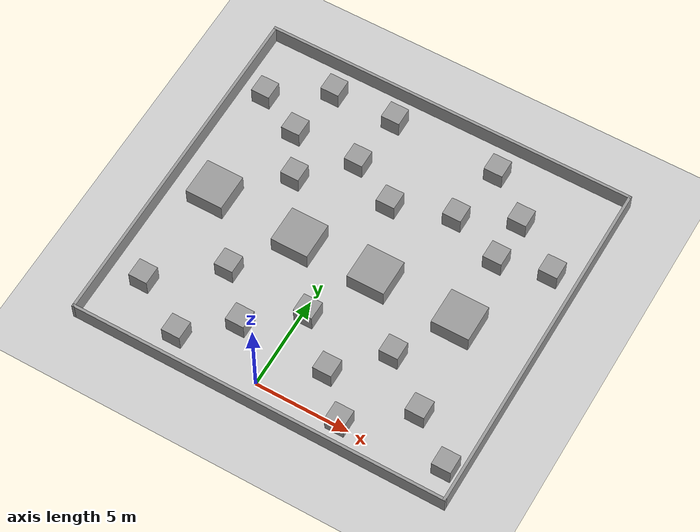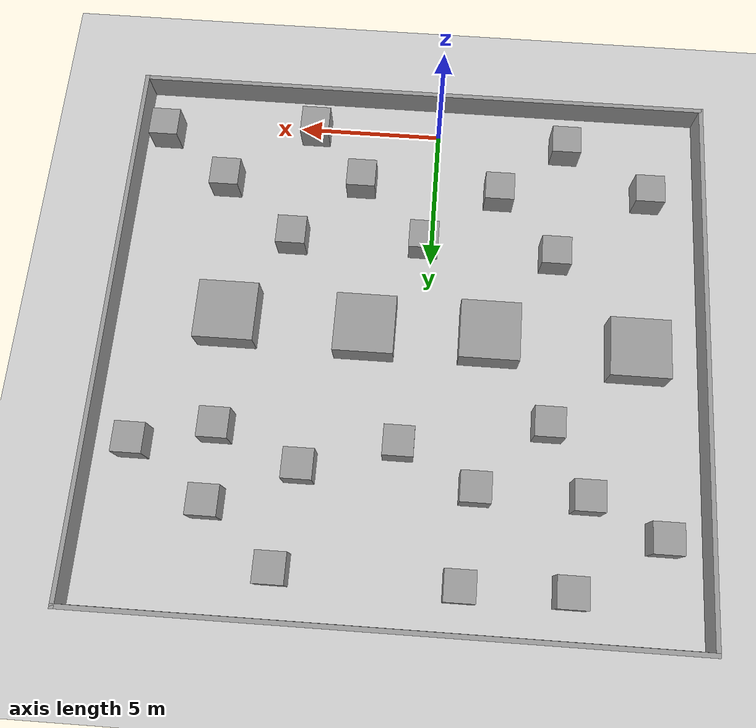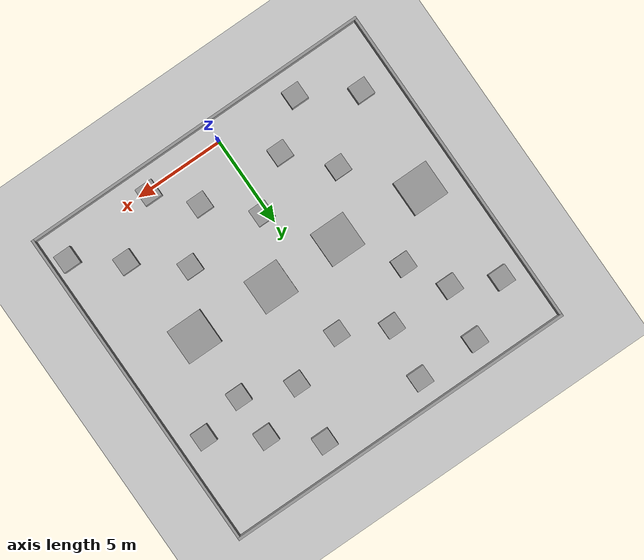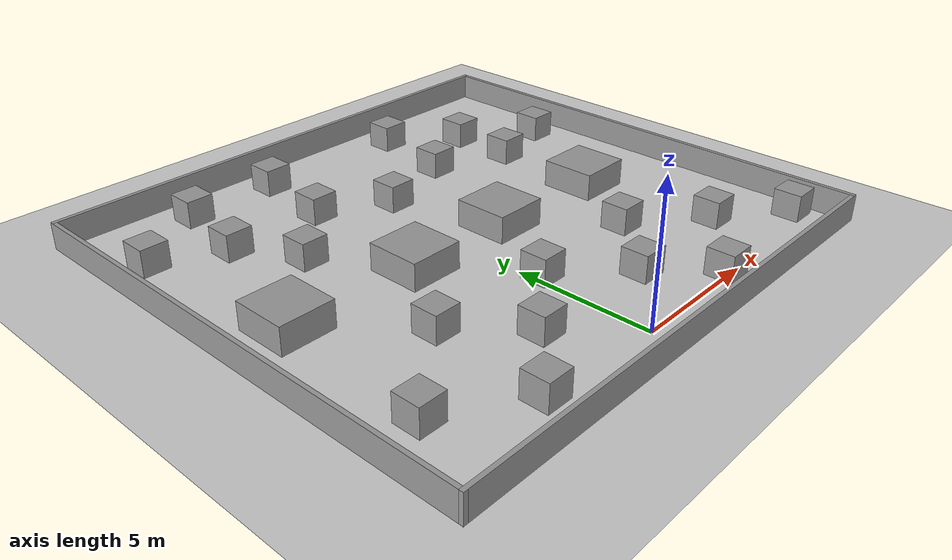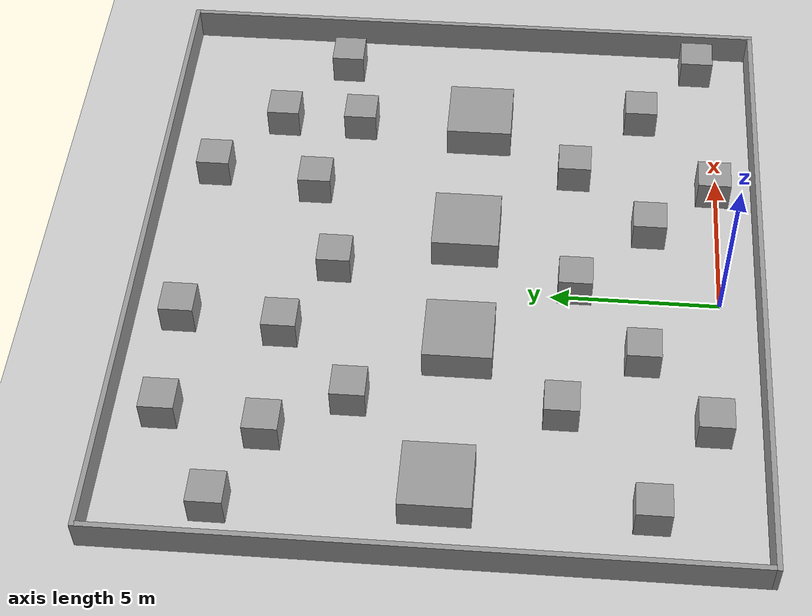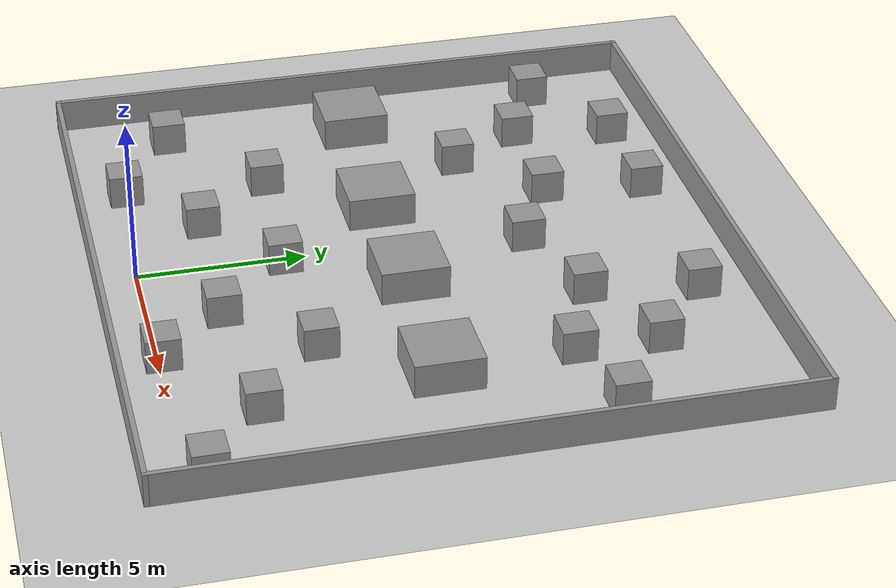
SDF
<sdf version="1.6">
 <world name="default">
  <light name="sun" type="directional">
   <pose>0 0 10 0 -0 0</pose>
   <diffuse>0.8 0.8 0.8 1</diffuse>
   <specular>0.2 0.2 0.2 1</specular>
   <attenuation>
    <range>1000</range>
    <constant>0.9</constant>
    <linear>0.01</linear>
    <quadratic>0.001</quadratic>
   </attenuation>
   <direction>-0.5 0.1 -0.9</direction>
  </light>
  <model name="ground_plane">
   <static>1</static>
   <link name="link">
    <collision name="collision">
     <geometry><plane><normal>0 0 1</normal><size>100 100</size></plane></geometry>
     <surface><friction><ode><mu>100</mu><mu2>50</mu2></ode></friction></surface>
    </collision>
    <visual name="visual">
     <cast_shadows>0</cast_shadows>
     <geometry><plane><normal>0 0 1</normal><size>100 100</size></plane></geometry>
     <material>
      <script><uri>file://media/materials/scripts/gazebo.material</uri><name>Gazebo/Grey</name></script>
     </material>
    </visual>
   </link>
  </model>
  <gravity>0 0 -9.8</gravity>
  <magnetic_field>6e-06 2.3e-05 -4.2e-05</magnetic_field>
  <atmosphere type="adiabatic"/>
  <physics name="default_physics" default="0" type="ode">
   <max_step_size>0.001</max_step_size>
   <real_time_factor>1</real_time_factor>
   <real_time_update_rate>1000</real_time_update_rate>
  </physics>
  <scene><ambient>0.4 0.4 0.4 1</ambient><background>0.7 0.7 0.7 1</background><shadows>1</shadows></scene>
  <spherical_coordinates>
   <surface_model>EARTH_WGS84</surface_model>
   <latitude_deg>0</latitude_deg>
   <longitude_deg>0</longitude_deg>
   <elevation>0</elevation>
   <heading_deg>0</heading_deg>
  </spherical_coordinates>
  <model name="map1">
   <pose>0.69437 8.013 0 0 -0 0</pose>
   <link name="Wall_0">
    <collision name="Wall_0_Collision">
     <geometry><box><size>20 0.15 1</size></box></geometry>
     <pose>0 0 0.5 0 -0 0</pose>
    </collision>
    <visual name="Wall_0_Visual">
     <pose>0 0 0.5 0 -0 0</pose>
     <geometry><box><size>20 0.15 1</size></box></geometry>
     <material>
      <script><uri>file://media/materials/scripts/gazebo.material</uri><name>Gazebo/Grey</name></script>
      <ambient>1 1 1 1</ambient>
     </material>
     <meta><layer>0</layer></meta>
    </visual>
    <pose>0 9.175 0 0 -0 0</pose>
   </link>
   <link name="Wall_3">
    <collision name="Wall_3_Collision">
     <geometry><box><size>18.5 0.15 1</size></box></geometry>
     <pose>0 0 0.5 0 -0 0</pose>
    </collision>
    <visual name="Wall_3_Visual">
     <pose>0 0 0.5 0 -0 0</pose>
     <geometry><box><size>18.5 0.15 1</size></box></geometry>
     <material>
      <script><uri>file://media/materials/scripts/gazebo.material</uri><name>Gazebo/Grey</name></script>
      <ambient>1 1 1 1</ambient>
     </material>
     <meta><layer>0</layer></meta>
    </visual>
    <pose>9.925 0 0 0 -0 -1.5708</pose>
   </link>
   <link name="Wall_4">
    <collision name="Wall_4_Collision">
     <geometry><box><size>20 0.15 1</size></box></geometry>
     <pose>0 0 0.5 0 -0 0</pose>
    </collision>
    <visual name="Wall_4_Visual">
     <pose>0 0 0.5 0 -0 0</pose>
     <geometry><box><size>20 0.15 1</size></box></geometry>
     <material>
      <script><uri>file://media/materials/scripts/gazebo.material</uri><name>Gazebo/Grey</name></script>
      <ambient>1 1 1 1</ambient>
     </material>
     <meta><layer>0</layer></meta>
    </visual>
    <pose>0 -9.175 0 0 -0 3.14159</pose>
   </link>
   <link name="Wall_5">
    <collision name="Wall_5_Collision">
     <geometry><box><size>18.5 0.15 1</size></box></geometry>
     <pose>0 0 0.5 0 -0 0</pose>
    </collision>
    <visual name="Wall_5_Visual">
     <pose>0 0 0.5 0 -0 0</pose>
     <geometry><box><size>18.5 0.15 1</size></box></geometry>
     <material>
      <script><uri>file://media/materials/scripts/gazebo.material</uri><name>Gazebo/Grey</name></script>
      <ambient>1 1 1 1</ambient>
     </material>
     <meta><layer>0</layer></meta>
    </visual>
    <pose>-9.925 0 0 0 -0 1.5708</pose>
   </link>
   <static>1</static>
  </model>
  <model name="box_1">
   <link name="link_3">
    <inertial>
     <mass>1</mass>
     <inertia>
      <ixx>0.166667</ixx>
      <ixy>0</ixy>
      <ixz>0</ixz>
      <iyy>0.166667</iyy>
      <iyz>0</iyz>
      <izz>0.166667</izz>
     </inertia>
    </inertial>
    <pose>-0.10623 1.19174 0.5 0 -0 0</pose>
    <visual name="visual">
     <geometry><box><size>1 1 1</size></box></geometry>
     <material>
      <lighting>1</lighting>
      <script><uri>file://media/materials/scripts/gazebo.material</uri><name>Gazebo/Grey</name></script>
      <shader type="pixel"/>
     </material>
    </visual>
    <collision name="collision">
     <geometry><box><size>1 1 1</size></box></geometry>
     <surface>
      <friction>
       <ode><mu>1</mu><mu2>1</mu2><fdir1>0 0 0</fdir1><slip1>0</slip1><slip2>0</slip2></ode>
       <torsional>
        <coefficient>1</coefficient>
        <patch_radius>0</patch_radius>
        <surface_radius>0</surface_radius>
        <use_patch_radius>1</use_patch_radius>
        <ode><slip>0</slip></ode>
       </torsional>
      </friction>
      <bounce><restitution_coefficient>0</restitution_coefficient><threshold>1e+06</threshold></bounce>
      <contact>
       <collide_without_contact>0</collide_without_contact>
       <collide_without_contact_bitmask>1</collide_without_contact_bitmask>
       <collide_bitmask>1</collide_bitmask>
       <ode>
        <soft_cfm>0</soft_cfm>
        <soft_erp>0.2</soft_erp>
        <kp>1e+13</kp>
        <kd>1</kd>
        <max_vel>0.01</max_vel>
        <min_depth>0</min_depth>
       </ode>
       <bullet>
        <split_impulse>1</split_impulse>
        <split_impulse_penetration_threshold>-0.01</split_impulse_penetration_threshold>
        <soft_cfm>0</soft_cfm>
        <soft_erp>0.2</soft_erp>
        <kp>1e+13</kp>
        <kd>1</kd>
       </bullet>
      </contact>
     </surface>
    </collision>
   </link>
   <static>0</static>
   <pose>-2.12221 1.08979 -1.7e-05 1e-05 -0 0</pose>
  </model>
  <model name="box_1_clone">
   <link name="link_3">
    <inertial>
     <mass>1</mass>
     <inertia>
      <ixx>0.166667</ixx>
      <ixy>0</ixy>
      <ixz>0</ixz>
      <iyy>0.166667</iyy>
      <iyz>0</iyz>
      <izz>0.166667</izz>
     </inertia>
    </inertial>
    <pose>-0.10623 1.19174 0.5 0 -0 0</pose>
    <visual name="visual">
     <geometry><box><size>1 1 1</size></box></geometry>
     <material>
      <lighting>1</lighting>
      <script><uri>file://media/materials/scripts/gazebo.material</uri><name>Gazebo/Grey</name></script>
      <shader type="pixel"/>
     </material>
    </visual>
    <collision name="collision">
     <geometry><box><size>1 1 1</size></box></geometry>
     <surface>
      <friction>
       <ode><mu>1</mu><mu2>1</mu2><fdir1>0 0 0</fdir1><slip1>0</slip1><slip2>0</slip2></ode>
       <torsional>
        <coefficient>1</coefficient>
        <patch_radius>0</patch_radius>
        <surface_radius>0</surface_radius>
        <use_patch_radius>1</use_patch_radius>
        <ode><slip>0</slip></ode>
       </torsional>
      </friction>
      <bounce><restitution_coefficient>0</restitution_coefficient><threshold>1e+06</threshold></bounce>
      <contact>
       <collide_without_contact>0</collide_without_contact>
       <collide_without_contact_bitmask>1</collide_without_contact_bitmask>
       <collide_bitmask>1</collide_bitmask>
       <ode>
        <soft_cfm>0</soft_cfm>
        <soft_erp>0.2</soft_erp>
        <kp>1e+13</kp>
        <kd>1</kd>
        <max_vel>0.01</max_vel>
        <min_depth>0</min_depth>
       </ode>
       <bullet>
        <split_impulse>1</split_impulse>
        <split_impulse_penetration_threshold>-0.01</split_impulse_penetration_threshold>
        <soft_cfm>0</soft_cfm>
        <soft_erp>0.2</soft_erp>
        <kp>1e+13</kp>
        <kd>1</kd>
       </bullet>
      </contact>
     </surface>
    </collision>
   </link>
   <static>0</static>
   <pose>-4.13322 3.35982 -1.7e-05 1e-05 -0 0</pose>
  </model>
  <model name="box_1_clone_0">
   <link name="link_3">
    <inertial>
     <mass>1</mass>
     <inertia>
      <ixx>0.166667</ixx>
      <ixy>0</ixy>
      <ixz>0</ixz>
      <iyy>0.166667</iyy>
      <iyz>0</iyz>
      <izz>0.166667</izz>
     </inertia>
    </inertial>
    <pose>-0.10623 1.19174 0.5 0 -0 0</pose>
    <visual name="visual">
     <geometry><box><size>1 1 1</size></box></geometry>
     <material>
      <lighting>1</lighting>
      <script><uri>file://media/materials/scripts/gazebo.material</uri><name>Gazebo/Grey</name></script>
      <shader type="pixel"/>
     </material>
    </visual>
    <collision name="collision">
     <geometry><box><size>1 1 1</size></box></geometry>
     <surface>
      <friction>
       <ode><mu>1</mu><mu2>1</mu2><fdir1>0 0 0</fdir1><slip1>0</slip1><slip2>0</slip2></ode>
       <torsional>
        <coefficient>1</coefficient>
        <patch_radius>0</patch_radius>
        <surface_radius>0</surface_radius>
        <use_patch_radius>1</use_patch_radius>
        <ode><slip>0</slip></ode>
       </torsional>
      </friction>
      <bounce><restitution_coefficient>0</restitution_coefficient><threshold>1e+06</threshold></bounce>
      <contact>
       <collide_without_contact>0</collide_without_contact>
       <collide_without_contact_bitmask>1</collide_without_contact_bitmask>
       <collide_bitmask>1</collide_bitmask>
       <ode>
        <soft_cfm>0</soft_cfm>
        <soft_erp>0.2</soft_erp>
        <kp>1e+13</kp>
        <kd>1</kd>
        <max_vel>0.01</max_vel>
        <min_depth>0</min_depth>
       </ode>
       <bullet>
        <split_impulse>1</split_impulse>
        <split_impulse_penetration_threshold>-0.01</split_impulse_penetration_threshold>
        <soft_cfm>0</soft_cfm>
        <soft_erp>0.2</soft_erp>
        <kp>1e+13</kp>
        <kd>1</kd>
       </bullet>
      </contact>
     </surface>
    </collision>
   </link>
   <static>0</static>
   <pose>0.390969 3.09007 -1.7e-05 1e-05 -0 0</pose>
  </model>
  <model name="box_1_clone_1">
   <link name="link_3">
    <inertial>
     <mass>1</mass>
     <inertia>
      <ixx>0.166667</ixx>
      <ixy>0</ixy>
      <ixz>0</ixz>
      <iyy>0.166667</iyy>
      <iyz>0</iyz>
      <izz>0.166667</izz>
     </inertia>
    </inertial>
    <pose>-0.10623 1.19174 0.5 0 -0 0</pose>
    <visual name="visual">
     <geometry><box><size>1 1 1</size></box></geometry>
     <material>
      <lighting>1</lighting>
      <script><uri>file://media/materials/scripts/gazebo.material</uri><name>Gazebo/Grey</name></script>
      <shader type="pixel"/>
     </material>
    </visual>
    <collision name="collision">
     <geometry><box><size>1 1 1</size></box></geometry>
     <surface>
      <friction>
       <ode><mu>1</mu><mu2>1</mu2><fdir1>0 0 0</fdir1><slip1>0</slip1><slip2>0</slip2></ode>
       <torsional>
        <coefficient>1</coefficient>
        <patch_radius>0</patch_radius>
        <surface_radius>0</surface_radius>
        <use_patch_radius>1</use_patch_radius>
        <ode><slip>0</slip></ode>
       </torsional>
      </friction>
      <bounce><restitution_coefficient>0</restitution_coefficient><threshold>1e+06</threshold></bounce>
      <contact>
       <collide_without_contact>0</collide_without_contact>
       <collide_without_contact_bitmask>1</collide_without_contact_bitmask>
       <collide_bitmask>1</collide_bitmask>
       <ode>
        <soft_cfm>0</soft_cfm>
        <soft_erp>0.2</soft_erp>
        <kp>1e+13</kp>
        <kd>1</kd>
        <max_vel>0.01</max_vel>
        <min_depth>0</min_depth>
       </ode>
       <bullet>
        <split_impulse>1</split_impulse>
        <split_impulse_penetration_threshold>-0.01</split_impulse_penetration_threshold>
        <soft_cfm>0</soft_cfm>
        <soft_erp>0.2</soft_erp>
        <kp>1e+13</kp>
        <kd>1</kd>
       </bullet>
      </contact>
     </surface>
    </collision>
   </link>
   <static>0</static>
   <pose>4.91437 3.23507 -1.7e-05 1e-05 -0 0</pose>
  </model>
  <model name="box_1_clone_2">
   <link name="link_3">
    <inertial>
     <mass>1</mass>
     <inertia>
      <ixx>0.166667</ixx>
      <ixy>0</ixy>
      <ixz>0</ixz>
      <iyy>0.166667</iyy>
      <iyz>0</iyz>
      <izz>0.166667</izz>
     </inertia>
    </inertial>
    <pose>-0.10623 1.19174 0.5 0 -0 0</pose>
    <visual name="visual">
     <geometry><box><size>1 1 1</size></box></geometry>
     <material>
      <lighting>1</lighting>
      <script><uri>file://media/materials/scripts/gazebo.material</uri><name>Gazebo/Grey</name></script>
      <shader type="pixel"/>
     </material>
    </visual>
    <collision name="collision">
     <geometry><box><size>1 1 1</size></box></geometry>
     <surface>
      <friction>
       <ode><mu>1</mu><mu2>1</mu2><fdir1>0 0 0</fdir1><slip1>0</slip1><slip2>0</slip2></ode>
       <torsional>
        <coefficient>1</coefficient>
        <patch_radius>0</patch_radius>
        <surface_radius>0</surface_radius>
        <use_patch_radius>1</use_patch_radius>
        <ode><slip>0</slip></ode>
       </torsional>
      </friction>
      <bounce><restitution_coefficient>0</restitution_coefficient><threshold>1e+06</threshold></bounce>
      <contact>
       <collide_without_contact>0</collide_without_contact>
       <collide_without_contact_bitmask>1</collide_without_contact_bitmask>
       <collide_bitmask>1</collide_bitmask>
       <ode>
        <soft_cfm>0</soft_cfm>
        <soft_erp>0.2</soft_erp>
        <kp>1e+13</kp>
        <kd>1</kd>
        <max_vel>0.01</max_vel>
        <min_depth>0</min_depth>
       </ode>
       <bullet>
        <split_impulse>1</split_impulse>
        <split_impulse_penetration_threshold>-0.01</split_impulse_penetration_threshold>
        <soft_cfm>0</soft_cfm>
        <soft_erp>0.2</soft_erp>
        <kp>1e+13</kp>
        <kd>1</kd>
       </bullet>
      </contact>
     </surface>
    </collision>
   </link>
   <static>0</static>
   <pose>2.70949 0.9178 -1.7e-05 1e-05 -0 0</pose>
  </model>
  <model name="box_1_clone_3">
   <link name="link_3">
    <inertial>
     <mass>1</mass>
     <inertia>
      <ixx>0.166667</ixx>
      <ixy>0</ixy>
      <ixz>0</ixz>
      <iyy>0.166667</iyy>
      <iyz>0</iyz>
      <izz>0.166667</izz>
     </inertia>
    </inertial>
    <pose>-0.10623 1.19174 0.5 0 -0 0</pose>
    <visual name="visual">
     <geometry><box><size>1 1 1</size></box></geometry>
     <material>
      <lighting>1</lighting>
      <script><uri>file://media/materials/scripts/gazebo.material</uri><name>Gazebo/Grey</name></script>
      <shader type="pixel"/>
     </material>
    </visual>
    <collision name="collision">
     <geometry><box><size>1 1 1</size></box></geometry>
     <surface>
      <friction>
       <ode><mu>1</mu><mu2>1</mu2><fdir1>0 0 0</fdir1><slip1>0</slip1><slip2>0</slip2></ode>
       <torsional>
        <coefficient>1</coefficient>
        <patch_radius>0</patch_radius>
        <surface_radius>0</surface_radius>
        <use_patch_radius>1</use_patch_radius>
        <ode><slip>0</slip></ode>
       </torsional>
      </friction>
      <bounce><restitution_coefficient>0</restitution_coefficient><threshold>1e+06</threshold></bounce>
      <contact>
       <collide_without_contact>0</collide_without_contact>
       <collide_without_contact_bitmask>1</collide_without_contact_bitmask>
       <collide_bitmask>1</collide_bitmask>
       <ode>
        <soft_cfm>0</soft_cfm>
        <soft_erp>0.2</soft_erp>
        <kp>1e+13</kp>
        <kd>1</kd>
        <max_vel>0.01</max_vel>
        <min_depth>0</min_depth>
       </ode>
       <bullet>
        <split_impulse>1</split_impulse>
        <split_impulse_penetration_threshold>-0.01</split_impulse_penetration_threshold>
        <soft_cfm>0</soft_cfm>
        <soft_erp>0.2</soft_erp>
        <kp>1e+13</kp>
        <kd>1</kd>
       </bullet>
      </contact>
     </surface>
    </collision>
   </link>
   <static>0</static>
   <pose>7.45583 1.18895 -1.7e-05 1e-05 -0 0</pose>
  </model>
  <model name="box_1_clone_4">
   <link name="link_3">
    <inertial>
     <mass>1</mass>
     <inertia>
      <ixx>0.166667</ixx>
      <ixy>0</ixy>
      <ixz>0</ixz>
      <iyy>0.166667</iyy>
      <iyz>0</iyz>
      <izz>0.166667</izz>
     </inertia>
    </inertial>
    <pose>-0.10623 1.19174 0.5 0 -0 0</pose>
    <visual name="visual">
     <geometry><box><size>1 1 1</size></box></geometry>
     <material>
      <lighting>1</lighting>
      <script><uri>file://media/materials/scripts/gazebo.material</uri><name>Gazebo/Grey</name></script>
      <shader type="pixel"/>
     </material>
    </visual>
    <collision name="collision">
     <geometry><box><size>1 1 1</size></box></geometry>
     <surface>
      <friction>
       <ode><mu>1</mu><mu2>1</mu2><fdir1>0 0 0</fdir1><slip1>0</slip1><slip2>0</slip2></ode>
       <torsional>
        <coefficient>1</coefficient>
        <patch_radius>0</patch_radius>
        <surface_radius>0</surface_radius>
        <use_patch_radius>1</use_patch_radius>
        <ode><slip>0</slip></ode>
       </torsional>
      </friction>
      <bounce><restitution_coefficient>0</restitution_coefficient><threshold>1e+06</threshold></bounce>
      <contact>
       <collide_without_contact>0</collide_without_contact>
       <collide_without_contact_bitmask>1</collide_without_contact_bitmask>
       <collide_bitmask>1</collide_bitmask>
       <ode>
        <soft_cfm>0</soft_cfm>
        <soft_erp>0.2</soft_erp>
        <kp>1e+13</kp>
        <kd>1</kd>
        <max_vel>0.01</max_vel>
        <min_depth>0</min_depth>
       </ode>
       <bullet>
        <split_impulse>1</split_impulse>
        <split_impulse_penetration_threshold>-0.01</split_impulse_penetration_threshold>
        <soft_cfm>0</soft_cfm>
        <soft_erp>0.2</soft_erp>
        <kp>1e+13</kp>
        <kd>1</kd>
       </bullet>
      </contact>
     </surface>
    </collision>
   </link>
   <static>0</static>
   <pose>-4.39972 -0.886482 -1.7e-05 1e-05 -0 0</pose>
  </model>
  <model name="box_1_clone_5">
   <link name="link_3">
    <inertial>
     <mass>1</mass>
     <inertia>
      <ixx>0.166667</ixx>
      <ixy>0</ixy>
      <ixz>0</ixz>
      <iyy>0.166667</iyy>
      <iyz>0</iyz>
      <izz>0.166667</izz>
     </inertia>
    </inertial>
    <pose>-0.10623 1.19174 0.5 0 -0 0</pose>
    <visual name="visual">
     <geometry><box><size>1 1 1</size></box></geometry>
     <material>
      <lighting>1</lighting>
      <script><uri>file://media/materials/scripts/gazebo.material</uri><name>Gazebo/Grey</name></script>
      <shader type="pixel"/>
     </material>
    </visual>
    <collision name="collision">
     <geometry><box><size>1 1 1</size></box></geometry>
     <surface>
      <friction>
       <ode><mu>1</mu><mu2>1</mu2><fdir1>0 0 0</fdir1><slip1>0</slip1><slip2>0</slip2></ode>
       <torsional>
        <coefficient>1</coefficient>
        <patch_radius>0</patch_radius>
        <surface_radius>0</surface_radius>
        <use_patch_radius>1</use_patch_radius>
        <ode><slip>0</slip></ode>
       </torsional>
      </friction>
      <bounce><restitution_coefficient>0</restitution_coefficient><threshold>1e+06</threshold></bounce>
      <contact>
       <collide_without_contact>0</collide_without_contact>
       <collide_without_contact_bitmask>1</collide_without_contact_bitmask>
       <collide_bitmask>1</collide_bitmask>
       <ode>
        <soft_cfm>0</soft_cfm>
        <soft_erp>0.2</soft_erp>
        <kp>1e+13</kp>
        <kd>1</kd>
        <max_vel>0.01</max_vel>
        <min_depth>0</min_depth>
       </ode>
       <bullet>
        <split_impulse>1</split_impulse>
        <split_impulse_penetration_threshold>-0.01</split_impulse_penetration_threshold>
        <soft_cfm>0</soft_cfm>
        <soft_erp>0.2</soft_erp>
        <kp>1e+13</kp>
        <kd>1</kd>
       </bullet>
      </contact>
     </surface>
    </collision>
   </link>
   <static>0</static>
   <pose>4.51321 -1.05576 -1.7e-05 1e-05 -0 0</pose>
  </model>
  <model name="box_1_clone_6">
   <link name="link_3">
    <inertial>
     <mass>1</mass>
     <inertia>
      <ixx>0.166667</ixx>
      <ixy>0</ixy>
      <ixz>0</ixz>
      <iyy>0.166667</iyy>
      <iyz>0</iyz>
      <izz>0.166667</izz>
     </inertia>
    </inertial>
    <pose>-0.10623 1.19174 0.5 0 -0 0</pose>
    <visual name="visual">
     <geometry><box><size>1 1 1</size></box></geometry>
     <material>
      <lighting>1</lighting>
      <script><uri>file://media/materials/scripts/gazebo.material</uri><name>Gazebo/Grey</name></script>
      <shader type="pixel"/>
     </material>
    </visual>
    <collision name="collision">
     <geometry><box><size>1 1 1</size></box></geometry>
     <surface>
      <friction>
       <ode><mu>1</mu><mu2>1</mu2><fdir1>0 0 0</fdir1><slip1>0</slip1><slip2>0</slip2></ode>
       <torsional>
        <coefficient>1</coefficient>
        <patch_radius>0</patch_radius>
        <surface_radius>0</surface_radius>
        <use_patch_radius>1</use_patch_radius>
        <ode><slip>0</slip></ode>
       </torsional>
      </friction>
      <bounce><restitution_coefficient>0</restitution_coefficient><threshold>1e+06</threshold></bounce>
      <contact>
       <collide_without_contact>0</collide_without_contact>
       <collide_without_contact_bitmask>1</collide_without_contact_bitmask>
       <collide_bitmask>1</collide_bitmask>
       <ode>
        <soft_cfm>0</soft_cfm>
        <soft_erp>0.2</soft_erp>
        <kp>1e+13</kp>
        <kd>1</kd>
        <max_vel>0.01</max_vel>
        <min_depth>0</min_depth>
       </ode>
       <bullet>
        <split_impulse>1</split_impulse>
        <split_impulse_penetration_threshold>-0.01</split_impulse_penetration_threshold>
        <soft_cfm>0</soft_cfm>
        <soft_erp>0.2</soft_erp>
        <kp>1e+13</kp>
        <kd>1</kd>
       </bullet>
      </contact>
     </surface>
    </collision>
   </link>
   <static>0</static>
   <pose>-4.04185 9.30466 -1.7e-05 1e-05 -0 0</pose>
  </model>
  <model name="box_1_clone_7">
   <link name="link_3">
    <inertial>
     <mass>1</mass>
     <inertia>
      <ixx>0.166667</ixx>
      <ixy>0</ixy>
      <ixz>0</ixz>
      <iyy>0.166667</iyy>
      <iyz>0</iyz>
      <izz>0.166667</izz>
     </inertia>
    </inertial>
    <pose>-0.10623 1.19174 0.5 0 -0 0</pose>
    <visual name="visual">
     <geometry><box><size>1 1 1</size></box></geometry>
     <material>
      <lighting>1</lighting>
      <script><uri>file://media/materials/scripts/gazebo.material</uri><name>Gazebo/Grey</name></script>
      <shader type="pixel"/>
     </material>
    </visual>
    <collision name="collision">
     <geometry><box><size>1 1 1</size></box></geometry>
     <surface>
      <friction>
       <ode><mu>1</mu><mu2>1</mu2><fdir1>0 0 0</fdir1><slip1>0</slip1><slip2>0</slip2></ode>
       <torsional>
        <coefficient>1</coefficient>
        <patch_radius>0</patch_radius>
        <surface_radius>0</surface_radius>
        <use_patch_radius>1</use_patch_radius>
        <ode><slip>0</slip></ode>
       </torsional>
      </friction>
      <bounce><restitution_coefficient>0</restitution_coefficient><threshold>1e+06</threshold></bounce>
      <contact>
       <collide_without_contact>0</collide_without_contact>
       <collide_without_contact_bitmask>1</collide_without_contact_bitmask>
       <collide_bitmask>1</collide_bitmask>
       <ode>
        <soft_cfm>0</soft_cfm>
        <soft_erp>0.2</soft_erp>
        <kp>1e+13</kp>
        <kd>1</kd>
        <max_vel>0.01</max_vel>
        <min_depth>0</min_depth>
       </ode>
       <bullet>
        <split_impulse>1</split_impulse>
        <split_impulse_penetration_threshold>-0.01</split_impulse_penetration_threshold>
        <soft_cfm>0</soft_cfm>
        <soft_erp>0.2</soft_erp>
        <kp>1e+13</kp>
        <kd>1</kd>
       </bullet>
      </contact>
     </surface>
    </collision>
   </link>
   <static>0</static>
   <pose>-1.77572 11.5345 -6e-06 0 1e-05 0</pose>
  </model>
  <model name="box_1_clone_8">
   <link name="link_3">
    <inertial>
     <mass>1</mass>
     <inertia>
      <ixx>0.166667</ixx>
      <ixy>0</ixy>
      <ixz>0</ixz>
      <iyy>0.166667</iyy>
      <iyz>0</iyz>
      <izz>0.166667</izz>
     </inertia>
    </inertial>
    <pose>-0.10623 1.19174 0.5 0 -0 0</pose>
    <visual name="visual">
     <geometry><box><size>1 1 1</size></box></geometry>
     <material>
      <lighting>1</lighting>
      <script><uri>file://media/materials/scripts/gazebo.material</uri><name>Gazebo/Grey</name></script>
      <shader type="pixel"/>
     </material>
    </visual>
    <collision name="collision">
     <geometry><box><size>1 1 1</size></box></geometry>
     <surface>
      <friction>
       <ode><mu>1</mu><mu2>1</mu2><fdir1>0 0 0</fdir1><slip1>0</slip1><slip2>0</slip2></ode>
       <torsional>
        <coefficient>1</coefficient>
        <patch_radius>0</patch_radius>
        <surface_radius>0</surface_radius>
        <use_patch_radius>1</use_patch_radius>
        <ode><slip>0</slip></ode>
       </torsional>
      </friction>
      <bounce><restitution_coefficient>0</restitution_coefficient><threshold>1e+06</threshold></bounce>
      <contact>
       <collide_without_contact>0</collide_without_contact>
       <collide_without_contact_bitmask>1</collide_without_contact_bitmask>
       <collide_bitmask>1</collide_bitmask>
       <ode>
        <soft_cfm>0</soft_cfm>
        <soft_erp>0.2</soft_erp>
        <kp>1e+13</kp>
        <kd>1</kd>
        <max_vel>0.01</max_vel>
        <min_depth>0</min_depth>
       </ode>
       <bullet>
        <split_impulse>1</split_impulse>
        <split_impulse_penetration_threshold>-0.01</split_impulse_penetration_threshold>
        <soft_cfm>0</soft_cfm>
        <soft_erp>0.2</soft_erp>
        <kp>1e+13</kp>
        <kd>1</kd>
       </bullet>
      </contact>
     </surface>
    </collision>
   </link>
   <static>0</static>
   <pose>0.740542 10.251 -1.7e-05 1e-05 -0 0</pose>
  </model>
  <model name="box_1_clone_9">
   <link name="link_3">
    <inertial>
     <mass>1</mass>
     <inertia>
      <ixx>0.166667</ixx>
      <ixy>0</ixy>
      <ixz>0</ixz>
      <iyy>0.166667</iyy>
      <iyz>0</iyz>
      <izz>0.166667</izz>
     </inertia>
    </inertial>
    <pose>-0.10623 1.19174 0.5 0 -0 0</pose>
    <visual name="visual">
     <geometry><box><size>1 1 1</size></box></geometry>
     <material>
      <lighting>1</lighting>
      <script><uri>file://media/materials/scripts/gazebo.material</uri><name>Gazebo/Grey</name></script>
      <shader type="pixel"/>
     </material>
    </visual>
    <collision name="collision">
     <geometry><box><size>1 1 1</size></box></geometry>
     <surface>
      <friction>
       <ode><mu>1</mu><mu2>1</mu2><fdir1>0 0 0</fdir1><slip1>0</slip1><slip2>0</slip2></ode>
       <torsional>
        <coefficient>1</coefficient>
        <patch_radius>0</patch_radius>
        <surface_radius>0</surface_radius>
        <use_patch_radius>1</use_patch_radius>
        <ode><slip>0</slip></ode>
       </torsional>
      </friction>
      <bounce><restitution_coefficient>0</restitution_coefficient><threshold>1e+06</threshold></bounce>
      <contact>
       <collide_without_contact>0</collide_without_contact>
       <collide_without_contact_bitmask>1</collide_without_contact_bitmask>
       <collide_bitmask>1</collide_bitmask>
       <ode>
        <soft_cfm>0</soft_cfm>
        <soft_erp>0.2</soft_erp>
        <kp>1e+13</kp>
        <kd>1</kd>
        <max_vel>0.01</max_vel>
        <min_depth>0</min_depth>
       </ode>
       <bullet>
        <split_impulse>1</split_impulse>
        <split_impulse_penetration_threshold>-0.01</split_impulse_penetration_threshold>
        <soft_cfm>0</soft_cfm>
        <soft_erp>0.2</soft_erp>
        <kp>1e+13</kp>
        <kd>1</kd>
       </bullet>
      </contact>
     </surface>
    </collision>
   </link>
   <static>0</static>
   <pose>3.85585 11.1976 -4e-06 0 -1e-05 0</pose>
  </model>
  <model name="box_1_clone_10">
   <link name="link_3">
    <inertial>
     <mass>1</mass>
     <inertia>
      <ixx>0.166667</ixx>
      <ixy>0</ixy>
      <ixz>0</ixz>
      <iyy>0.166667</iyy>
      <iyz>0</iyz>
      <izz>0.166667</izz>
     </inertia>
    </inertial>
    <pose>-0.10623 1.19174 0.5 0 -0 0</pose>
    <visual name="visual">
     <geometry><box><size>1 1 1</size></box></geometry>
     <material>
      <lighting>1</lighting>
      <script><uri>file://media/materials/scripts/gazebo.material</uri><name>Gazebo/Grey</name></script>
      <shader type="pixel"/>
     </material>
    </visual>
    <collision name="collision">
     <geometry><box><size>1 1 1</size></box></geometry>
     <surface>
      <friction>
       <ode><mu>1</mu><mu2>1</mu2><fdir1>0 0 0</fdir1><slip1>0</slip1><slip2>0</slip2></ode>
       <torsional>
        <coefficient>1</coefficient>
        <patch_radius>0</patch_radius>
        <surface_radius>0</surface_radius>
        <use_patch_radius>1</use_patch_radius>
        <ode><slip>0</slip></ode>
       </torsional>
      </friction>
      <bounce><restitution_coefficient>0</restitution_coefficient><threshold>1e+06</threshold></bounce>
      <contact>
       <collide_without_contact>0</collide_without_contact>
       <collide_without_contact_bitmask>1</collide_without_contact_bitmask>
       <collide_bitmask>1</collide_bitmask>
       <ode>
        <soft_cfm>0</soft_cfm>
        <soft_erp>0.2</soft_erp>
        <kp>1e+13</kp>
        <kd>1</kd>
        <max_vel>0.01</max_vel>
        <min_depth>0</min_depth>
       </ode>
       <bullet>
        <split_impulse>1</split_impulse>
        <split_impulse_penetration_threshold>-0.01</split_impulse_penetration_threshold>
        <soft_cfm>0</soft_cfm>
        <soft_erp>0.2</soft_erp>
        <kp>1e+13</kp>
        <kd>1</kd>
       </bullet>
      </contact>
     </surface>
    </collision>
   </link>
   <static>0</static>
   <pose>6.66951 10.0723 -1.7e-05 1e-05 -0 0</pose>
  </model>
  <model name="box_1_clone_11">
   <link name="link_3">
    <inertial>
     <mass>1</mass>
     <inertia>
      <ixx>0.166667</ixx>
      <ixy>0</ixy>
      <ixz>0</ixz>
      <iyy>0.166667</iyy>
      <iyz>0</iyz>
      <izz>0.166667</izz>
     </inertia>
    </inertial>
    <pose>-0.10623 1.19174 0.5 0 -0 0</pose>
    <visual name="visual">
     <geometry><box><size>1 1 1</size></box></geometry>
     <material>
      <lighting>1</lighting>
      <script><uri>file://media/materials/scripts/gazebo.material</uri><name>Gazebo/Grey</name></script>
      <shader type="pixel"/>
     </material>
    </visual>
    <collision name="collision">
     <geometry><box><size>1 1 1</size></box></geometry>
     <surface>
      <friction>
       <ode><mu>1</mu><mu2>1</mu2><fdir1>0 0 0</fdir1><slip1>0</slip1><slip2>0</slip2></ode>
       <torsional>
        <coefficient>1</coefficient>
        <patch_radius>0</patch_radius>
        <surface_radius>0</surface_radius>
        <use_patch_radius>1</use_patch_radius>
        <ode><slip>0</slip></ode>
       </torsional>
      </friction>
      <bounce><restitution_coefficient>0</restitution_coefficient><threshold>1e+06</threshold></bounce>
      <contact>
       <collide_without_contact>0</collide_without_contact>
       <collide_without_contact_bitmask>1</collide_without_contact_bitmask>
       <collide_bitmask>1</collide_bitmask>
       <ode>
        <soft_cfm>0</soft_cfm>
        <soft_erp>0.2</soft_erp>
        <kp>1e+13</kp>
        <kd>1</kd>
        <max_vel>0.01</max_vel>
        <min_depth>0</min_depth>
       </ode>
       <bullet>
        <split_impulse>1</split_impulse>
        <split_impulse_penetration_threshold>-0.01</split_impulse_penetration_threshold>
        <soft_cfm>0</soft_cfm>
        <soft_erp>0.2</soft_erp>
        <kp>1e+13</kp>
        <kd>1</kd>
       </bullet>
      </contact>
     </surface>
    </collision>
   </link>
   <static>0</static>
   <pose>9.29485 10.7438 -1.7e-05 1e-05 -0 0</pose>
  </model>
  <model name="box_1_clone_12">
   <link name="link_3">
    <inertial>
     <mass>1</mass>
     <inertia>
      <ixx>0.166667</ixx>
      <ixy>0</ixy>
      <ixz>0</ixz>
      <iyy>0.166667</iyy>
      <iyz>0</iyz>
      <izz>0.166667</izz>
     </inertia>
    </inertial>
    <pose>-0.10623 1.19174 0.5 0 -0 0</pose>
    <visual name="visual">
     <geometry><box><size>1 1 1</size></box></geometry>
     <material>
      <lighting>1</lighting>
      <script><uri>file://media/materials/scripts/gazebo.material</uri><name>Gazebo/Grey</name></script>
      <shader type="pixel"/>
     </material>
    </visual>
    <collision name="collision">
     <geometry><box><size>1 1 1</size></box></geometry>
     <surface>
      <friction>
       <ode><mu>1</mu><mu2>1</mu2><fdir1>0 0 0</fdir1><slip1>0</slip1><slip2>0</slip2></ode>
       <torsional>
        <coefficient>1</coefficient>
        <patch_radius>0</patch_radius>
        <surface_radius>0</surface_radius>
        <use_patch_radius>1</use_patch_radius>
        <ode><slip>0</slip></ode>
       </torsional>
      </friction>
      <bounce><restitution_coefficient>0</restitution_coefficient><threshold>1e+06</threshold></bounce>
      <contact>
       <collide_without_contact>0</collide_without_contact>
       <collide_without_contact_bitmask>1</collide_without_contact_bitmask>
       <collide_bitmask>1</collide_bitmask>
       <ode>
        <soft_cfm>0</soft_cfm>
        <soft_erp>0.2</soft_erp>
        <kp>1e+13</kp>
        <kd>1</kd>
        <max_vel>0.01</max_vel>
        <min_depth>0</min_depth>
       </ode>
       <bullet>
        <split_impulse>1</split_impulse>
        <split_impulse_penetration_threshold>-0.01</split_impulse_penetration_threshold>
        <soft_cfm>0</soft_cfm>
        <soft_erp>0.2</soft_erp>
        <kp>1e+13</kp>
        <kd>1</kd>
       </bullet>
      </contact>
     </surface>
    </collision>
   </link>
   <static>0</static>
   <pose>6.67943 12.5304 -1.7e-05 1e-05 -0 0</pose>
  </model>
  <model name="box_1_clone_13">
   <link name="link_3">
    <inertial>
     <mass>1</mass>
     <inertia>
      <ixx>0.166667</ixx>
      <ixy>0</ixy>
      <ixz>0</ixz>
      <iyy>0.166667</iyy>
      <iyz>0</iyz>
      <izz>0.166667</izz>
     </inertia>
    </inertial>
    <pose>-0.10623 1.19174 0.5 0 -0 0</pose>
    <visual name="visual">
     <geometry><box><size>1 1 1</size></box></geometry>
     <material>
      <lighting>1</lighting>
      <script><uri>file://media/materials/scripts/gazebo.material</uri><name>Gazebo/Grey</name></script>
      <shader type="pixel"/>
     </material>
    </visual>
    <collision name="collision">
     <geometry><box><size>1 1 1</size></box></geometry>
     <surface>
      <friction>
       <ode><mu>1</mu><mu2>1</mu2><fdir1>0 0 0</fdir1><slip1>0</slip1><slip2>0</slip2></ode>
       <torsional>
        <coefficient>1</coefficient>
        <patch_radius>0</patch_radius>
        <surface_radius>0</surface_radius>
        <use_patch_radius>1</use_patch_radius>
        <ode><slip>0</slip></ode>
       </torsional>
      </friction>
      <bounce><restitution_coefficient>0</restitution_coefficient><threshold>1e+06</threshold></bounce>
      <contact>
       <collide_without_contact>0</collide_without_contact>
       <collide_without_contact_bitmask>1</collide_without_contact_bitmask>
       <collide_bitmask>1</collide_bitmask>
       <ode>
        <soft_cfm>0</soft_cfm>
        <soft_erp>0.2</soft_erp>
        <kp>1e+13</kp>
        <kd>1</kd>
        <max_vel>0.01</max_vel>
        <min_depth>0</min_depth>
       </ode>
       <bullet>
        <split_impulse>1</split_impulse>
        <split_impulse_penetration_threshold>-0.01</split_impulse_penetration_threshold>
        <soft_cfm>0</soft_cfm>
        <soft_erp>0.2</soft_erp>
        <kp>1e+13</kp>
        <kd>1</kd>
       </bullet>
      </contact>
     </surface>
    </collision>
   </link>
   <static>0</static>
   <pose>4.37159 14.4177 -1.7e-05 1e-05 -0 0</pose>
  </model>
  <model name="box_1_clone_14">
   <link name="link_3">
    <inertial>
     <mass>1</mass>
     <inertia>
      <ixx>0.166667</ixx>
      <ixy>0</ixy>
      <ixz>0</ixz>
      <iyy>0.166667</iyy>
      <iyz>0</iyz>
      <izz>0.166667</izz>
     </inertia>
    </inertial>
    <pose>-0.10623 1.19174 0.5 0 -0 0</pose>
    <visual name="visual">
     <geometry><box><size>1 1 1</size></box></geometry>
     <material>
      <lighting>1</lighting>
      <script><uri>file://media/materials/scripts/gazebo.material</uri><name>Gazebo/Grey</name></script>
      <shader type="pixel"/>
     </material>
    </visual>
    <collision name="collision">
     <geometry><box><size>1 1 1</size></box></geometry>
     <surface>
      <friction>
       <ode><mu>1</mu><mu2>1</mu2><fdir1>0 0 0</fdir1><slip1>0</slip1><slip2>0</slip2></ode>
       <torsional>
        <coefficient>1</coefficient>
        <patch_radius>0</patch_radius>
        <surface_radius>0</surface_radius>
        <use_patch_radius>1</use_patch_radius>
        <ode><slip>0</slip></ode>
       </torsional>
      </friction>
      <bounce><restitution_coefficient>0</restitution_coefficient><threshold>1e+06</threshold></bounce>
      <contact>
       <collide_without_contact>0</collide_without_contact>
       <collide_without_contact_bitmask>1</collide_without_contact_bitmask>
       <collide_bitmask>1</collide_bitmask>
       <ode>
        <soft_cfm>0</soft_cfm>
        <soft_erp>0.2</soft_erp>
        <kp>1e+13</kp>
        <kd>1</kd>
        <max_vel>0.01</max_vel>
        <min_depth>0</min_depth>
       </ode>
       <bullet>
        <split_impulse>1</split_impulse>
        <split_impulse_penetration_threshold>-0.01</split_impulse_penetration_threshold>
        <soft_cfm>0</soft_cfm>
        <soft_erp>0.2</soft_erp>
        <kp>1e+13</kp>
        <kd>1</kd>
       </bullet>
      </contact>
     </surface>
    </collision>
   </link>
   <static>0</static>
   <pose>-1.43147 14.554 -1.7e-05 1e-05 -0 0</pose>
  </model>
  <model name="box_1_clone_15">
   <link name="link_3">
    <inertial>
     <mass>1</mass>
     <inertia>
      <ixx>0.166667</ixx>
      <ixy>0</ixy>
      <ixz>0</ixz>
      <iyy>0.166667</iyy>
      <iyz>0</iyz>
      <izz>0.166667</izz>
     </inertia>
    </inertial>
    <pose>-0.10623 1.19174 0.5 0 -0 0</pose>
    <visual name="visual">
     <geometry><box><size>1 1 1</size></box></geometry>
     <material>
      <lighting>1</lighting>
      <script><uri>file://media/materials/scripts/gazebo.material</uri><name>Gazebo/Grey</name></script>
      <shader type="pixel"/>
     </material>
    </visual>
    <collision name="collision">
     <geometry><box><size>1 1 1</size></box></geometry>
     <surface>
      <friction>
       <ode><mu>1</mu><mu2>1</mu2><fdir1>0 0 0</fdir1><slip1>0</slip1><slip2>0</slip2></ode>
       <torsional>
        <coefficient>1</coefficient>
        <patch_radius>0</patch_radius>
        <surface_radius>0</surface_radius>
        <use_patch_radius>1</use_patch_radius>
        <ode><slip>0</slip></ode>
       </torsional>
      </friction>
      <bounce><restitution_coefficient>0</restitution_coefficient><threshold>1e+06</threshold></bounce>
      <contact>
       <collide_without_contact>0</collide_without_contact>
       <collide_without_contact_bitmask>1</collide_without_contact_bitmask>
       <collide_bitmask>1</collide_bitmask>
       <ode>
        <soft_cfm>0</soft_cfm>
        <soft_erp>0.2</soft_erp>
        <kp>1e+13</kp>
        <kd>1</kd>
        <max_vel>0.01</max_vel>
        <min_depth>0</min_depth>
       </ode>
       <bullet>
        <split_impulse>1</split_impulse>
        <split_impulse_penetration_threshold>-0.01</split_impulse_penetration_threshold>
        <soft_cfm>0</soft_cfm>
        <soft_erp>0.2</soft_erp>
        <kp>1e+13</kp>
        <kd>1</kd>
       </bullet>
      </contact>
     </surface>
    </collision>
   </link>
   <static>0</static>
   <pose>-4.84389 14.5059 -1.7e-05 1e-05 -0 0</pose>
  </model>
  <model name="box_1_clone_16">
   <link name="link_3">
    <inertial>
     <mass>1</mass>
     <inertia>
      <ixx>0.166667</ixx>
      <ixy>0</ixy>
      <ixz>0</ixz>
      <iyy>0.166667</iyy>
      <iyz>0</iyz>
      <izz>0.166667</izz>
     </inertia>
    </inertial>
    <pose>-0.10623 1.19174 0.5 0 -0 0</pose>
    <visual name="visual">
     <geometry><box><size>1 1 1</size></box></geometry>
     <material>
      <lighting>1</lighting>
      <script><uri>file://media/materials/scripts/gazebo.material</uri><name>Gazebo/Grey</name></script>
      <shader type="pixel"/>
     </material>
    </visual>
    <collision name="collision">
     <geometry><box><size>1 1 1</size></box></geometry>
     <surface>
      <friction>
       <ode><mu>1</mu><mu2>1</mu2><fdir1>0 0 0</fdir1><slip1>0</slip1><slip2>0</slip2></ode>
       <torsional>
        <coefficient>1</coefficient>
        <patch_radius>0</patch_radius>
        <surface_radius>0</surface_radius>
        <use_patch_radius>1</use_patch_radius>
        <ode><slip>0</slip></ode>
       </torsional>
      </friction>
      <bounce><restitution_coefficient>0</restitution_coefficient><threshold>1e+06</threshold></bounce>
      <contact>
       <collide_without_contact>0</collide_without_contact>
       <collide_without_contact_bitmask>1</collide_without_contact_bitmask>
       <collide_bitmask>1</collide_bitmask>
       <ode>
        <soft_cfm>0</soft_cfm>
        <soft_erp>0.2</soft_erp>
        <kp>1e+13</kp>
        <kd>1</kd>
        <max_vel>0.01</max_vel>
        <min_depth>0</min_depth>
       </ode>
       <bullet>
        <split_impulse>1</split_impulse>
        <split_impulse_penetration_threshold>-0.01</split_impulse_penetration_threshold>
        <soft_cfm>0</soft_cfm>
        <soft_erp>0.2</soft_erp>
        <kp>1e+13</kp>
        <kd>1</kd>
       </bullet>
      </contact>
     </surface>
    </collision>
   </link>
   <static>0</static>
   <pose>-5.33839 11.5569 -1.7e-05 1e-05 -0 0</pose>
  </model>
  <model name="box_1_clone_17">
   <link name="link_3">
    <inertial>
     <mass>1</mass>
     <inertia>
      <ixx>0.166667</ixx>
      <ixy>0</ixy>
      <ixz>0</ixz>
      <iyy>0.166667</iyy>
      <iyz>0</iyz>
      <izz>0.166667</izz>
     </inertia>
    </inertial>
    <pose>-0.10623 1.19174 0.5 0 -0 0</pose>
    <visual name="visual">
     <geometry><box><size>1 1 1</size></box></geometry>
     <material>
      <lighting>1</lighting>
      <script><uri>file://media/materials/scripts/gazebo.material</uri><name>Gazebo/Grey</name></script>
      <shader type="pixel"/>
     </material>
    </visual>
    <collision name="collision">
     <geometry><box><size>1 1 1</size></box></geometry>
     <surface>
      <friction>
       <ode><mu>1</mu><mu2>1</mu2><fdir1>0 0 0</fdir1><slip1>0</slip1><slip2>0</slip2></ode>
       <torsional>
        <coefficient>1</coefficient>
        <patch_radius>0</patch_radius>
        <surface_radius>0</surface_radius>
        <use_patch_radius>1</use_patch_radius>
        <ode><slip>0</slip></ode>
       </torsional>
      </friction>
      <bounce><restitution_coefficient>0</restitution_coefficient><threshold>1e+06</threshold></bounce>
      <contact>
       <collide_without_contact>0</collide_without_contact>
       <collide_without_contact_bitmask>1</collide_without_contact_bitmask>
       <collide_bitmask>1</collide_bitmask>
       <ode>
        <soft_cfm>0</soft_cfm>
        <soft_erp>0.2</soft_erp>
        <kp>1e+13</kp>
        <kd>1</kd>
        <max_vel>0.01</max_vel>
        <min_depth>0</min_depth>
       </ode>
       <bullet>
        <split_impulse>1</split_impulse>
        <split_impulse_penetration_threshold>-0.01</split_impulse_penetration_threshold>
        <soft_cfm>0</soft_cfm>
        <soft_erp>0.2</soft_erp>
        <kp>1e+13</kp>
        <kd>1</kd>
       </bullet>
      </contact>
     </surface>
    </collision>
   </link>
   <static>0</static>
   <pose>-7.74453 12.6972 -1.7e-05 1e-05 -0 0</pose>
  </model>
  <model name="box_1_clone_18">
   <link name="link_3">
    <inertial>
     <mass>1</mass>
     <inertia>
      <ixx>0.166667</ixx>
      <ixy>0</ixy>
      <ixz>0</ixz>
      <iyy>0.166667</iyy>
      <iyz>0</iyz>
      <izz>0.166667</izz>
     </inertia>
    </inertial>
    <pose>-0.10623 1.19174 0.5 0 -0 0</pose>
    <visual name="visual">
     <geometry><box><size>1 1 1</size></box></geometry>
     <material>
      <lighting>1</lighting>
      <script><uri>file://media/materials/scripts/gazebo.material</uri><name>Gazebo/Grey</name></script>
      <shader type="pixel"/>
     </material>
    </visual>
    <collision name="collision">
     <geometry><box><size>1 1 1</size></box></geometry>
     <surface>
      <friction>
       <ode><mu>1</mu><mu2>1</mu2><fdir1>0 0 0</fdir1><slip1>0</slip1><slip2>0</slip2></ode>
       <torsional>
        <coefficient>1</coefficient>
        <patch_radius>0</patch_radius>
        <surface_radius>0</surface_radius>
        <use_patch_radius>1</use_patch_radius>
        <ode><slip>0</slip></ode>
       </torsional>
      </friction>
      <bounce><restitution_coefficient>0</restitution_coefficient><threshold>1e+06</threshold></bounce>
      <contact>
       <collide_without_contact>0</collide_without_contact>
       <collide_without_contact_bitmask>1</collide_without_contact_bitmask>
       <collide_bitmask>1</collide_bitmask>
       <ode>
        <soft_cfm>0</soft_cfm>
        <soft_erp>0.2</soft_erp>
        <kp>1e+13</kp>
        <kd>1</kd>
        <max_vel>0.01</max_vel>
        <min_depth>0</min_depth>
       </ode>
       <bullet>
        <split_impulse>1</split_impulse>
        <split_impulse_penetration_threshold>-0.01</split_impulse_penetration_threshold>
        <soft_cfm>0</soft_cfm>
        <soft_erp>0.2</soft_erp>
        <kp>1e+13</kp>
        <kd>1</kd>
       </bullet>
      </contact>
     </surface>
    </collision>
   </link>
   <static>0</static>
   <pose>9.8426 -0.611829 -1.7e-05 1e-05 -0 0</pose>
  </model>
  <model name="box_1_clone_19">
   <link name="link_3">
    <inertial>
     <mass>1</mass>
     <inertia>
      <ixx>0.166667</ixx>
      <ixy>0</ixy>
      <ixz>0</ixz>
      <iyy>0.166667</iyy>
      <iyz>0</iyz>
      <izz>0.166667</izz>
     </inertia>
    </inertial>
    <pose>-0.10623 1.19174 0.5 0 -0 0</pose>
    <visual name="visual">
     <geometry><box><size>1 1 1</size></box></geometry>
     <material>
      <lighting>1</lighting>
      <script><uri>file://media/materials/scripts/gazebo.material</uri><name>Gazebo/Grey</name></script>
      <shader type="pixel"/>
     </material>
    </visual>
    <collision name="collision">
     <geometry><box><size>1 1 1</size></box></geometry>
     <surface>
      <friction>
       <ode><mu>1</mu><mu2>1</mu2><fdir1>0 0 0</fdir1><slip1>0</slip1><slip2>0</slip2></ode>
       <torsional>
        <coefficient>1</coefficient>
        <patch_radius>0</patch_radius>
        <surface_radius>0</surface_radius>
        <use_patch_radius>1</use_patch_radius>
        <ode><slip>0</slip></ode>
       </torsional>
      </friction>
      <bounce><restitution_coefficient>0</restitution_coefficient><threshold>1e+06</threshold></bounce>
      <contact>
       <collide_without_contact>0</collide_without_contact>
       <collide_without_contact_bitmask>1</collide_without_contact_bitmask>
       <collide_bitmask>1</collide_bitmask>
       <ode>
        <soft_cfm>0</soft_cfm>
        <soft_erp>0.2</soft_erp>
        <kp>1e+13</kp>
        <kd>1</kd>
        <max_vel>0.01</max_vel>
        <min_depth>0</min_depth>
       </ode>
       <bullet>
        <split_impulse>1</split_impulse>
        <split_impulse_penetration_threshold>-0.01</split_impulse_penetration_threshold>
        <soft_cfm>0</soft_cfm>
        <soft_erp>0.2</soft_erp>
        <kp>1e+13</kp>
        <kd>1</kd>
       </bullet>
      </contact>
     </surface>
    </collision>
   </link>
   <static>0</static>
   <pose>-7.30771 0.83159 -1.7e-05 1e-05 -0 0</pose>
  </model>
  <model name="box3">
   <link name="link_0">
    <inertial>
     <mass>200</mass>
     <inertia><ixx>83.3333</ixx><ixy>0</ixy><ixz>0</ixz><iyy>83.3333</iyy><iyz>0</iyz><izz>133.333</izz></inertia>
     <pose>0 0 1 0 -0 0</pose>
    </inertial>
    <visual name="visual">
     <geometry><box><size>2 2 1</size></box></geometry>
     <material>
      <lighting>1</lighting>
      <script><uri>file://media/materials/scripts/gazebo.material</uri><name>Gazebo/Grey</name></script>
      <shader type="pixel"><normal_map>__default__</normal_map></shader>
      <ambient>0.3 0.3 0.3 1</ambient>
      <diffuse>0.7 0.7 0.7 1</diffuse>
      <specular>0.01 0.01 0.01 1</specular>
      <emissive>0 0 0 1</emissive>
     </material>
    </visual>
    <collision name="collision">
     <geometry><box><size>2 2 1</size></box></geometry>
     <surface>
      <friction>
       <ode><mu>1</mu><mu2>1</mu2><fdir1>0 0 0</fdir1><slip1>0</slip1><slip2>0</slip2></ode>
       <torsional>
        <coefficient>1</coefficient>
        <patch_radius>0</patch_radius>
        <surface_radius>0</surface_radius>
        <use_patch_radius>1</use_patch_radius>
        <ode><slip>0</slip></ode>
       </torsional>
      </friction>
      <bounce><restitution_coefficient>0</restitution_coefficient><threshold>1e+06</threshold></bounce>
      <contact>
       <collide_without_contact>0</collide_without_contact>
       <collide_without_contact_bitmask>1</collide_without_contact_bitmask>
       <collide_bitmask>1</collide_bitmask>
       <ode>
        <soft_cfm>0</soft_cfm>
        <soft_erp>0.2</soft_erp>
        <kp>1e+13</kp>
        <kd>1</kd>
        <max_vel>0.01</max_vel>
        <min_depth>0</min_depth>
       </ode>
       <bullet>
        <split_impulse>1</split_impulse>
        <split_impulse_penetration_threshold>-0.01</split_impulse_penetration_threshold>
        <soft_cfm>0</soft_cfm>
        <soft_erp>0.2</soft_erp>
        <kp>1e+13</kp>
        <kd>1</kd>
       </bullet>
      </contact>
     </surface>
    </collision>
   </link>
   <static>0</static>
   <pose>-7.04035 7.81545 0.499997 0 -3e-06 0.000103</pose>
  </model>
  <model name="box3_clone">
   <link name="link_0">
    <inertial>
     <mass>200</mass>
     <inertia><ixx>83.3333</ixx><ixy>0</ixy><ixz>0</ixz><iyy>83.3333</iyy><iyz>0</iyz><izz>133.333</izz></inertia>
     <pose>0 0 1 0 -0 0</pose>
    </inertial>
    <visual name="visual">
     <geometry><box><size>2 2 1</size></box></geometry>
     <material>
      <lighting>1</lighting>
      <script><uri>file://media/materials/scripts/gazebo.material</uri><name>Gazebo/Grey</name></script>
      <shader type="pixel"><normal_map>__default__</normal_map></shader>
      <ambient>0.3 0.3 0.3 1</ambient>
      <diffuse>0.7 0.7 0.7 1</diffuse>
      <specular>0.01 0.01 0.01 1</specular>
      <emissive>0 0 0 1</emissive>
     </material>
    </visual>
    <collision name="collision">
     <geometry><box><size>2 2 1</size></box></geometry>
     <surface>
      <friction>
       <ode><mu>1</mu><mu2>1</mu2><fdir1>0 0 0</fdir1><slip1>0</slip1><slip2>0</slip2></ode>
       <torsional>
        <coefficient>1</coefficient>
        <patch_radius>0</patch_radius>
        <surface_radius>0</surface_radius>
        <use_patch_radius>1</use_patch_radius>
        <ode><slip>0</slip></ode>
       </torsional>
      </friction>
      <bounce><restitution_coefficient>0</restitution_coefficient><threshold>1e+06</threshold></bounce>
      <contact>
       <collide_without_contact>0</collide_without_contact>
       <collide_without_contact_bitmask>1</collide_without_contact_bitmask>
       <collide_bitmask>1</collide_bitmask>
       <ode>
        <soft_cfm>0</soft_cfm>
        <soft_erp>0.2</soft_erp>
        <kp>1e+13</kp>
        <kd>1</kd>
        <max_vel>0.01</max_vel>
        <min_depth>0</min_depth>
       </ode>
       <bullet>
        <split_impulse>1</split_impulse>
        <split_impulse_penetration_threshold>-0.01</split_impulse_penetration_threshold>
        <soft_cfm>0</soft_cfm>
        <soft_erp>0.2</soft_erp>
        <kp>1e+13</kp>
        <kd>1</kd>
       </bullet>
      </contact>
     </surface>
    </collision>
   </link>
   <static>0</static>
   <pose>-2.114 7.55347 0.5 0 -0 0.000105</pose>
  </model>
  <model name="box3_clone_0">
   <link name="link_0">
    <inertial>
     <mass>200</mass>
     <inertia><ixx>83.3333</ixx><ixy>0</ixy><ixz>0</ixz><iyy>83.3333</iyy><iyz>0</iyz><izz>133.333</izz></inertia>
     <pose>0 0 1 0 -0 0</pose>
    </inertial>
    <visual name="visual">
     <geometry><box><size>2 2 1</size></box></geometry>
     <material>
      <lighting>1</lighting>
      <script><uri>file://media/materials/scripts/gazebo.material</uri><name>Gazebo/Grey</name></script>
      <shader type="pixel"><normal_map>__default__</normal_map></shader>
      <ambient>0.3 0.3 0.3 1</ambient>
      <diffuse>0.7 0.7 0.7 1</diffuse>
      <specular>0.01 0.01 0.01 1</specular>
      <emissive>0 0 0 1</emissive>
     </material>
    </visual>
    <collision name="collision">
     <geometry><box><size>2 2 1</size></box></geometry>
     <surface>
      <friction>
       <ode><mu>1</mu><mu2>1</mu2><fdir1>0 0 0</fdir1><slip1>0</slip1><slip2>0</slip2></ode>
       <torsional>
        <coefficient>1</coefficient>
        <patch_radius>0</patch_radius>
        <surface_radius>0</surface_radius>
        <use_patch_radius>1</use_patch_radius>
        <ode><slip>0</slip></ode>
       </torsional>
      </friction>
      <bounce><restitution_coefficient>0</restitution_coefficient><threshold>1e+06</threshold></bounce>
      <contact>
       <collide_without_contact>0</collide_without_contact>
       <collide_without_contact_bitmask>1</collide_without_contact_bitmask>
       <collide_bitmask>1</collide_bitmask>
       <ode>
        <soft_cfm>0</soft_cfm>
        <soft_erp>0.2</soft_erp>
        <kp>1e+13</kp>
        <kd>1</kd>
        <max_vel>0.01</max_vel>
        <min_depth>0</min_depth>
       </ode>
       <bullet>
        <split_impulse>1</split_impulse>
        <split_impulse_penetration_threshold>-0.01</split_impulse_penetration_threshold>
        <soft_cfm>0</soft_cfm>
        <soft_erp>0.2</soft_erp>
        <kp>1e+13</kp>
        <kd>1</kd>
       </bullet>
      </contact>
     </surface>
    </collision>
   </link>
   <static>0</static>
   <pose>2.0291 7.60697 0.5 0 -0 0.000101</pose>
  </model>
  <model name="box3_clone_1">
   <link name="link_0">
    <inertial>
     <mass>200</mass>
     <inertia><ixx>83.3333</ixx><ixy>0</ixy><ixz>0</ixz><iyy>83.3333</iyy><iyz>0</iyz><izz>133.333</izz></inertia>
     <pose>0 0 1 0 -0 0</pose>
    </inertial>
    <visual name="visual">
     <geometry><box><size>2 2 1</size></box></geometry>
     <material>
      <lighting>1</lighting>
      <script><uri>file://media/materials/scripts/gazebo.material</uri><name>Gazebo/Grey</name></script>
      <shader type="pixel"><normal_map>__default__</normal_map></shader>
      <ambient>0.3 0.3 0.3 1</ambient>
      <diffuse>0.7 0.7 0.7 1</diffuse>
      <specular>0.01 0.01 0.01 1</specular>
      <emissive>0 0 0 1</emissive>
     </material>
    </visual>
    <collision name="collision">
     <geometry><box><size>2 2 1</size></box></geometry>
     <surface>
      <friction>
       <ode><mu>1</mu><mu2>1</mu2><fdir1>0 0 0</fdir1><slip1>0</slip1><slip2>0</slip2></ode>
       <torsional>
        <coefficient>1</coefficient>
        <patch_radius>0</patch_radius>
        <surface_radius>0</surface_radius>
        <use_patch_radius>1</use_patch_radius>
        <ode><slip>0</slip></ode>
       </torsional>
      </friction>
      <bounce><restitution_coefficient>0</restitution_coefficient><threshold>1e+06</threshold></bounce>
      <contact>
       <collide_without_contact>0</collide_without_contact>
       <collide_without_contact_bitmask>1</collide_without_contact_bitmask>
       <collide_bitmask>1</collide_bitmask>
       <ode>
        <soft_cfm>0</soft_cfm>
        <soft_erp>0.2</soft_erp>
        <kp>1e+13</kp>
        <kd>1</kd>
        <max_vel>0.01</max_vel>
        <min_depth>0</min_depth>
       </ode>
       <bullet>
        <split_impulse>1</split_impulse>
        <split_impulse_penetration_threshold>-0.01</split_impulse_penetration_threshold>
        <soft_cfm>0</soft_cfm>
        <soft_erp>0.2</soft_erp>
        <kp>1e+13</kp>
        <kd>1</kd>
       </bullet>
      </contact>
     </surface>
    </collision>
   </link>
   <static>0</static>
   <pose>6.65692 7.46672 0.499996 -1e-06 -3e-06 0.000317</pose>
  </model>
 </world>
</sdf>
